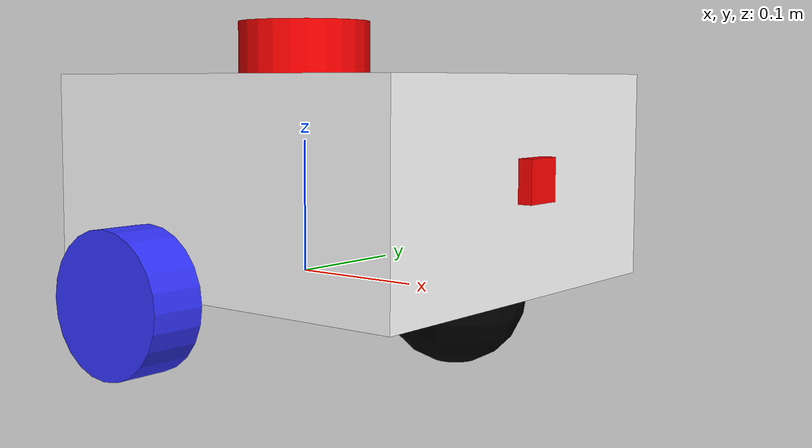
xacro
<?xml version="1.0"?>
<robot xmlns:xacro="http://www.ros.org/wiki/xacro"  name="robot">

    <xacro:include filename="robot_core.xacro" />

    <xacro:include filename="gazebo_control.xacro"/>
    <xacro:include filename="lidar.xacro"/>
    <xacro:include filename="depth_camera.xacro"/>

</robot>

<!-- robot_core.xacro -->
<robot xmlns:xacro="http://www.ros.org/wiki/xacro" >

    <xacro:include filename="inertial_macros.xacro"/>

    <material name="white">
        <color rgba="1 1 1 1" />
    </material>

    <material name="orange">
        <color rgba="1 0.3 0.1 1" />
    </material>

    <material name="blue">
        <color rgba="0.2 0.2 1 1" />
    </material>

    <material name="black">
        <color rgba="0 0 0 1" />
    </material>

    <material name="red">
        <color rgba="1 0 0 1" />
    </material>

    <!-- BASE LINK-->

    <link name="base_link">

    </link>

    <!-- CHASSIS LINK-->

    <joint name="chassis_joint" type="fixed">
        <parent link="base_link"/>
        <child link="chassis"/>
        <origin xyz="-0.1 0 0"/>
    </joint>

    <link name="chassis">
        <visual>
            <origin xyz="0.15 0 0.075"/>
            <geometry>
                <box size="0.3 0.3 0.15"/>

            </geometry>
            <material name="white"/>
        </visual>

        <collision>
            <origin xyz="0.15 0 0.075"/>
            <geometry>
                <box size="0.3 0.3 0.15"/>

            </geometry>
            <material name="white"/>
        </collision>
        <xacro:inertial_box mass="0.5" x="0.3" y="0.3" z="0.15">
            <origin xyz="0.15 0 0.075" rpy="0 0 0"/>
        </xacro:inertial_box>
    </link>

    <gazebo reference="chassis">
        <material>Gazebo/White</material>
    </gazebo>

    <!-- LEFT WHEEL LINK-->

    <joint name="left_wheel_joint" type="continuous">
        <parent link="base_link"/>
        <child link="left_wheel"/>
        <origin xyz="0 0.175 0" rpy="-${pi/2} 0 0"/>
        <axis xyz="0 0 1"/>
    </joint>

    <link name="left_wheel">
        <visual>
            <geometry>
                <cylinder radius="0.05" length="0.04"/>
            </geometry>
            <material name="blue"/>
        </visual>

        <collision>
            <geometry>
                <cylinder radius="0.05" length="0.04"/>
            </geometry>
            <material name="blue"/>
        </collision>
        <xacro:inertial_cylinder mass="0.1" length="0.04" radius="0.05">
            <origin xyz="0 0 0" rpy="0 0 0"/>
        </xacro:inertial_cylinder>
    </link>

    <gazebo reference="left_wheel">
        <material>Gazebo/Blue</material>
    </gazebo>

    <!-- RIGHT WHEEL LINK-->

    <joint name="right_wheel_joint" type="continuous">
        <parent link="base_link"/>
        <child link="right_wheel"/>
        <origin xyz="0 -0.175 0" rpy="${pi/2} 0 0"/>
        <axis xyz="0 0 -1"/>
    </joint>

    <link name="right_wheel">
        <visual>
            <geometry>
                <cylinder radius="0.05" length="0.04"/>
            </geometry>
            <material name="blue"/>
        </visual>

        <collision>
            <geometry>
                <cylinder radius="0.05" length="0.04"/>
            </geometry>
            <material name="blue"/>
        </collision>
        <xacro:inertial_cylinder mass="0.1" length="0.04" radius="0.05">
            <origin xyz="0 0 0" rpy="0 0 0"/>
        </xacro:inertial_cylinder>
    </link>

    <gazebo reference="right_wheel">
        <material>Gazebo/Blue</material>
    </gazebo>

    <!-- CASTER WHEEL LINK (Sarhoş teker)-->

    <joint name="caster_wheel_joint" type="fixed">
        <parent link="chassis"/>
        <child link="caster_wheel"/>
        <origin xyz="0.24 0 0"/>
    </joint>

    <link name="caster_wheel">
        <visual>
            <geometry>
                ·<sphere radius="0.05"/>
            </geometry>
            <material name="black"/>
        </visual>

        <collision>
            <geometry>
                ·<sphere radius="0.05"/>
            </geometry>
            <material name="black"/>
        </collision>
        <xacro:inertial_sphere mass="0.1" radius="0.05">
            <origin xyz="0 0 0" rpy="0 0 0"/>
        </xacro:inertial_sphere>
    </link>

    <gazebo reference="caster_wheel">
        <material>Gazebo/Black</material>
        <mu1 value="0.001"/>
        <mu2 value="0.001"/>
    </gazebo>

 </robot>

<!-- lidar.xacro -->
<robot xmlns:xacro="http://www.ros.org/wiki/xacro"  name="robot">

    <joint name="laser_joint" type="fixed">
        <parent link="chassis"/>
        <child link="laser_frame"/>
        <origin xyz="0.1 0 0.17" rpy="0 0 0"/>
    </joint>

    <link name="laser_frame">
        <visual>
            <geometry>
                <cylinder radius="0.05" length="0.04"/>
            </geometry>
            <material name="red"/>
        </visual>

        <collision>
            <geometry>
                <cylinder radius="0.05" length="0.04"/>
            </geometry>
            <material name="red"/>
        </collision>
        <xacro:inertial_cylinder mass="0.1" length="0.04" radius="0.05">
            <origin xyz="0 0 0" rpy="0 0 0"/>
        </xacro:inertial_cylinder>
    </link>

    <gazebo reference="laser_frame">
        <material>Gazebo/Red</material>

        <sensor name="laser" type="ray">
            <pose> 0 0 0 0 0 0 </pose>
            <visualize>false</visualize> <!-- Gazebo da ışınları göstermek için-->
            <update_rate>10</update_rate>
            <ray>
                <scan>
                    <horizontal>
                        <samples>360</samples>
                        <resolution>1</resolution>
                        <min_angle>-3.14</min_angle> <!-- 3.14 radyan yani pi radyan yani 180 derece-->
                        <max_angle>3.14</max_angle>
                    </horizontal>
                </scan>
                <range>
                    <min>0.3</min>
                    <max>12</max>
                    <resolution>0.01</resolution>
                </range>
            </ray>
            <plugin name="laser_controller" filename="libgazebo_ros_ray_sensor.so">
                <ros>
                    <argument>~/out:=scan</argument>
                </ros>
                <output_type>sensor_msgs/LaserScan</output_type>
                <frame_name>laser_frame</frame_name>
            </plugin>
        </sensor>
    </gazebo>

</robot>

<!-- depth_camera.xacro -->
<robot xmlns:xacro="http://www.ros.org/wiki/xacro"  name="robot">

    <joint name="camera_joint" type="fixed">
        <parent link="chassis"/>
        <child link="camera_link"/>
        <origin xyz="0.305 0 0.08" rpy="0 0 0"/>
    </joint>

    <link name="camera_link">
        <visual>
            <geometry>
                <box size="0.010 0.03 0.03"/>
            </geometry>
            <material name="red"/>
        </visual>
    </link>

    <joint name="camera_optical_joint" type="fixed">
        <parent link="camera_link"/>
        <child link="camera_link_optical"/>
        <origin xyz="0 0 0" rpy="${-pi/2} 0 ${-pi/2}"/>
    </joint>

    <link name="camera_link_optical"></link>

    <gazebo reference="camera_link">
        <material>Gazebo/Red</material>

        <sensor name="camera" type="depth">
            <pose> 0 0 0 0 0 0 </pose>
            <visualize>true</visualize>
            <update_rate>10</update_rate>
            <camera>
                <horizantal_fov>1.089</horizantal_fov> <!-- kameranın radyan cinsinden görüş açısı (fov)-->
                <image>
                    <format>B8G8R8</format>
                    <width>640</width>
                    <height>480</height>
                </image>
                <clip> <!-- kameranın görebileceği min ve maks uzaklıklar-->
                    <near>0.05</near>
                    <far>8.0</far>
                </clip>
            </camera>
            <plugin name="camera_controller" filename="libgazebo_ros_camera.so">
                <frame_name>camera_link_optical</frame_name>
                <min_depth>0.01</min_depth>
                <max_depth>50</max_depth>
            </plugin>
        </sensor>
    </gazebo>

</robot>
